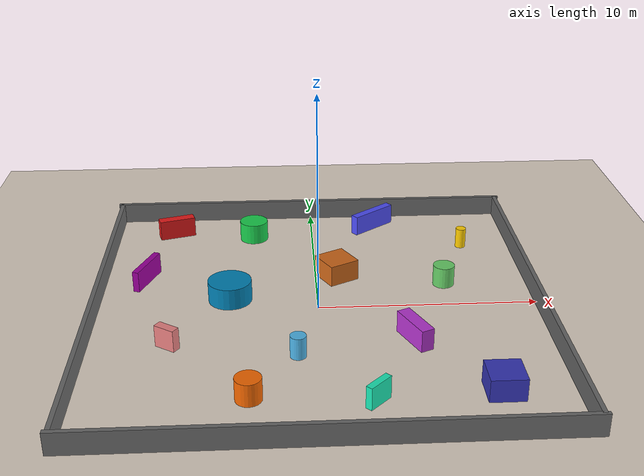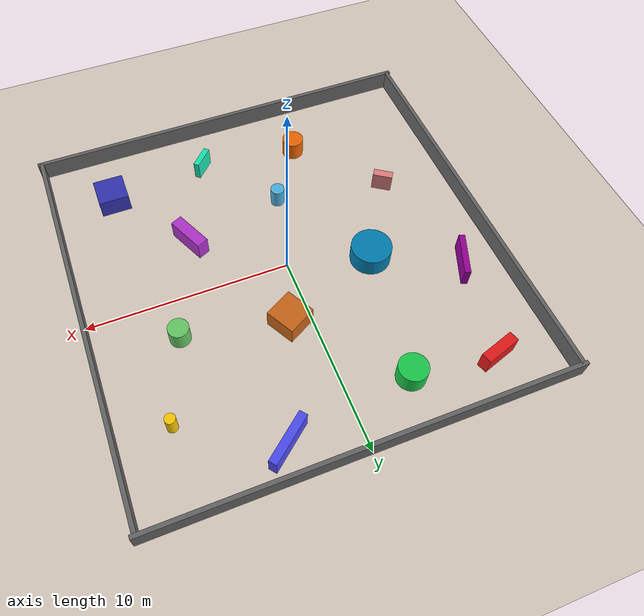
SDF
<?xml version="1.0" ?>
<!-- WORLD: Scatter — Random-looking mix of shapes, sizes, orientations -->
<sdf version="1.6">
  <world name="default">
    <physics name="1ms" type="ignored"><max_step_size>0.001</max_step_size><real_time_factor>1.0</real_time_factor></physics>
    <plugin filename="libignition-gazebo-physics-system.so" name="ignition::gazebo::systems::Physics"/>
    <plugin filename="libignition-gazebo-user-commands-system.so" name="ignition::gazebo::systems::UserCommands"/>
    <plugin filename="libignition-gazebo-scene-broadcaster-system.so" name="ignition::gazebo::systems::SceneBroadcaster"/>
    <light type="directional" name="sun"><cast_shadows>true</cast_shadows><pose>0 0 10 0 0 0</pose><diffuse>0.85 0.85 0.85 1</diffuse><specular>0.2 0.2 0.2 1</specular><attenuation><range>1000</range><constant>0.9</constant><linear>0.01</linear><quadratic>0.001</quadratic></attenuation><direction>-0.5 0.1 -0.9</direction></light>
    <model name="ground"><static>true</static><link name="l"><collision name="c"><geometry><plane><normal>0 0 1</normal><size>100 100</size></plane></geometry></collision><visual name="v"><geometry><plane><normal>0 0 1</normal><size>100 100</size></plane></geometry><material><ambient>0.85 0.8 0.75 1</ambient><diffuse>0.85 0.8 0.75 1</diffuse></material></visual></link></model>
    <model name="wn"><static>true</static><pose>0 10 0.5 0 0 0</pose><link name="l"><collision name="c"><geometry><box><size>20.4 0.2 1</size></box></geometry></collision><visual name="v"><geometry><box><size>20.4 0.2 1</size></box></geometry><material><ambient>0.4 0.4 0.4 1</ambient><diffuse>0.4 0.4 0.4 1</diffuse></material></visual></link></model>
    <model name="ws"><static>true</static><pose>0 -10 0.5 0 0 0</pose><link name="l"><collision name="c"><geometry><box><size>20.4 0.2 1</size></box></geometry></collision><visual name="v"><geometry><box><size>20.4 0.2 1</size></box></geometry><material><ambient>0.4 0.4 0.4 1</ambient><diffuse>0.4 0.4 0.4 1</diffuse></material></visual></link></model>
    <model name="we"><static>true</static><pose>10 0 0.5 0 0 0</pose><link name="l"><collision name="c"><geometry><box><size>0.2 20 1</size></box></geometry></collision><visual name="v"><geometry><box><size>0.2 20 1</size></box></geometry><material><ambient>0.4 0.4 0.4 1</ambient><diffuse>0.4 0.4 0.4 1</diffuse></material></visual></link></model>
    <model name="ww"><static>true</static><pose>-10 0 0.5 0 0 0</pose><link name="l"><collision name="c"><geometry><box><size>0.2 20 1</size></box></geometry></collision><visual name="v"><geometry><box><size>0.2 20 1</size></box></geometry><material><ambient>0.4 0.4 0.4 1</ambient><diffuse>0.4 0.4 0.4 1</diffuse></material></visual></link></model>

    <!-- Scattered objects: wild mix of shapes, sizes, angles -->
    <model name="x1"><static>true</static><pose>-7 8 0.5 0 0 0.3</pose><link name="l"><collision name="c"><geometry><box><size>1.8 0.5 1</size></box></geometry></collision><visual name="v"><geometry><box><size>1.8 0.5 1</size></box></geometry><material><ambient>0.9 0.1 0.1 1</ambient><diffuse>0.9 0.1 0.1 1</diffuse></material></visual></link></model>
    <model name="x2"><static>true</static><pose>-3 7.5 0.5 0 0 0</pose><link name="l"><collision name="c"><geometry><cylinder><radius>0.7</radius><length>1</length></cylinder></geometry></collision><visual name="v"><geometry><cylinder><radius>0.7</radius><length>1</length></cylinder></geometry><material><ambient>0.1 0.8 0.3 1</ambient><diffuse>0.1 0.8 0.3 1</diffuse></material></visual></link></model>
    <model name="x3"><static>true</static><pose>3.2 8.5 0.5 0 0 -0.9</pose><link name="l"><collision name="c"><geometry><box><size>0.4 2.5 1</size></box></geometry></collision><visual name="v"><geometry><box><size>0.4 2.5 1</size></box></geometry><material><ambient>0.3 0.3 0.95 1</ambient><diffuse>0.3 0.3 0.95 1</diffuse></material></visual></link></model>
    <model name="x4"><static>true</static><pose>7.5 6 0.5 0 0 0</pose><link name="l"><collision name="c"><geometry><cylinder><radius>0.25</radius><length>1</length></cylinder></geometry></collision><visual name="v"><geometry><cylinder><radius>0.25</radius><length>1</length></cylinder></geometry><material><ambient>1.0 0.8 0.0 1</ambient><diffuse>1.0 0.8 0.0 1</diffuse></material></visual></link></model>
    <model name="x5"><static>true</static><pose>-8 3 0.5 0 0 1.2</pose><link name="l"><collision name="c"><geometry><box><size>2.2 0.3 1</size></box></geometry></collision><visual name="v"><geometry><box><size>2.2 0.3 1</size></box></geometry><material><ambient>0.6 0.0 0.6 1</ambient><diffuse>0.6 0.0 0.6 1</diffuse></material></visual></link></model>
    <model name="x6"><static>true</static><pose>-4 1 0.5 0 0 0</pose><link name="l"><collision name="c"><geometry><cylinder><radius>1.0</radius><length>1</length></cylinder></geometry></collision><visual name="v"><geometry><cylinder><radius>1.0</radius><length>1</length></cylinder></geometry><material><ambient>0.0 0.5 0.7 1</ambient><diffuse>0.0 0.5 0.7 1</diffuse></material></visual></link></model>
    <model name="x7"><static>true</static><pose>1 3 0.5 0 0 0.5</pose><link name="l"><collision name="c"><geometry><box><size>1.5 1.5 1</size></box></geometry></collision><visual name="v"><geometry><box><size>1.5 1.5 1</size></box></geometry><material><ambient>0.8 0.4 0.1 1</ambient><diffuse>0.8 0.4 0.1 1</diffuse></material></visual></link></model>
    <model name="x8"><static>true</static><pose>6 2 0.5 0 0 0</pose><link name="l"><collision name="c"><geometry><cylinder><radius>0.5</radius><length>1</length></cylinder></geometry></collision><visual name="v"><geometry><cylinder><radius>0.5</radius><length>1</length></cylinder></geometry><material><ambient>0.4 0.8 0.4 1</ambient><diffuse>0.4 0.8 0.4 1</diffuse></material></visual></link></model>
    <model name="x9"><static>true</static><pose>-6.5 -3 0.5 0 0 -0.6</pose><link name="l"><collision name="c"><geometry><box><size>1.0 0.4 1</size></box></geometry></collision><visual name="v"><geometry><box><size>1.0 0.4 1</size></box></geometry><material><ambient>0.9 0.5 0.5 1</ambient><diffuse>0.9 0.5 0.5 1</diffuse></material></visual></link></model>
    <model name="x10"><static>true</static><pose>-1 -4 0.5 0 0 0</pose><link name="l"><collision name="c"><geometry><cylinder><radius>0.35</radius><length>1</length></cylinder></geometry></collision><visual name="v"><geometry><cylinder><radius>0.35</radius><length>1</length></cylinder></geometry><material><ambient>0.3 0.7 0.9 1</ambient><diffuse>0.3 0.7 0.9 1</diffuse></material></visual></link></model>
    <model name="x11"><static>true</static><pose>4 -3 0.5 0 0 2.0</pose><link name="l"><collision name="c"><geometry><box><size>2.0 0.6 1</size></box></geometry></collision><visual name="v"><geometry><box><size>2.0 0.6 1</size></box></geometry><material><ambient>0.7 0.2 0.8 1</ambient><diffuse>0.7 0.2 0.8 1</diffuse></material></visual></link></model>
    <model name="x12"><static>true</static><pose>-3 -7 0.5 0 0 0</pose><link name="l"><collision name="c"><geometry><cylinder><radius>0.55</radius><length>1</length></cylinder></geometry></collision><visual name="v"><geometry><cylinder><radius>0.55</radius><length>1</length></cylinder></geometry><material><ambient>0.95 0.4 0.0 1</ambient><diffuse>0.95 0.4 0.0 1</diffuse></material></visual></link></model>
    <model name="x13"><static>true</static><pose>2 -7.5 0.5 0 0 0.8</pose><link name="l"><collision name="c"><geometry><box><size>1.2 0.3 1</size></box></geometry></collision><visual name="v"><geometry><box><size>1.2 0.3 1</size></box></geometry><material><ambient>0.1 0.9 0.7 1</ambient><diffuse>0.1 0.9 0.7 1</diffuse></material></visual></link></model>
    <model name="x14"><static>true</static><pose>7 -7 0.5 0 0 0</pose><link name="l"><collision name="c"><geometry><box><size>1.5 1.5 1</size></box></geometry></collision><visual name="v"><geometry><box><size>1.5 1.5 1</size></box></geometry><material><ambient>0.2 0.2 0.7 1</ambient><diffuse>0.2 0.2 0.7 1</diffuse></material></visual></link></model>
  </world>
</sdf>
